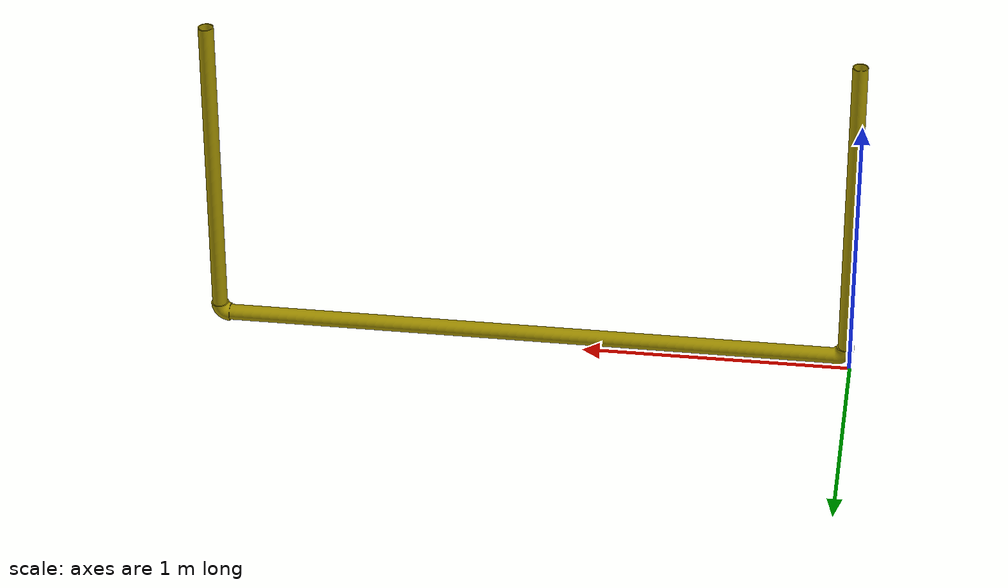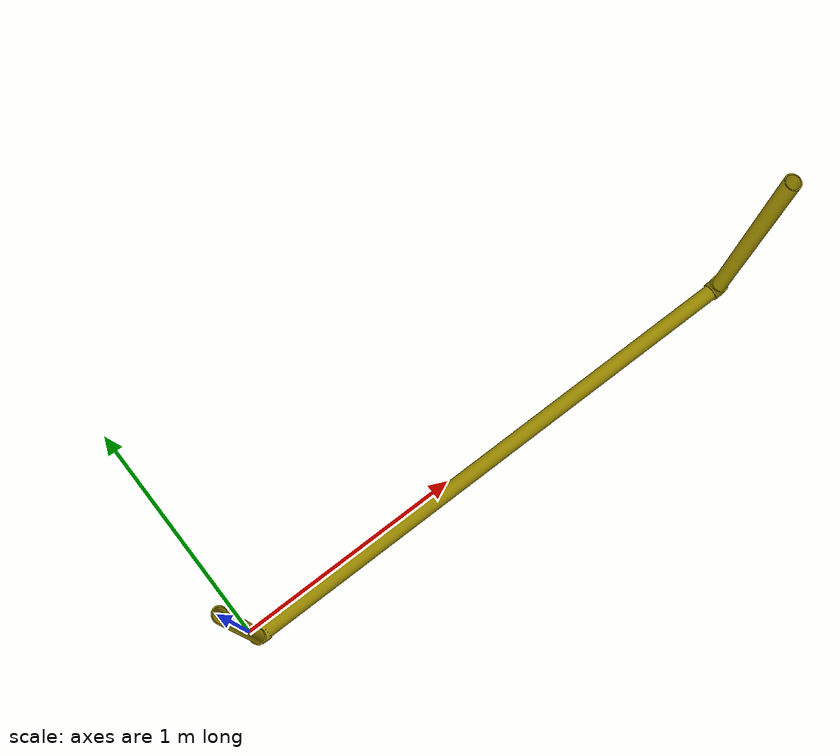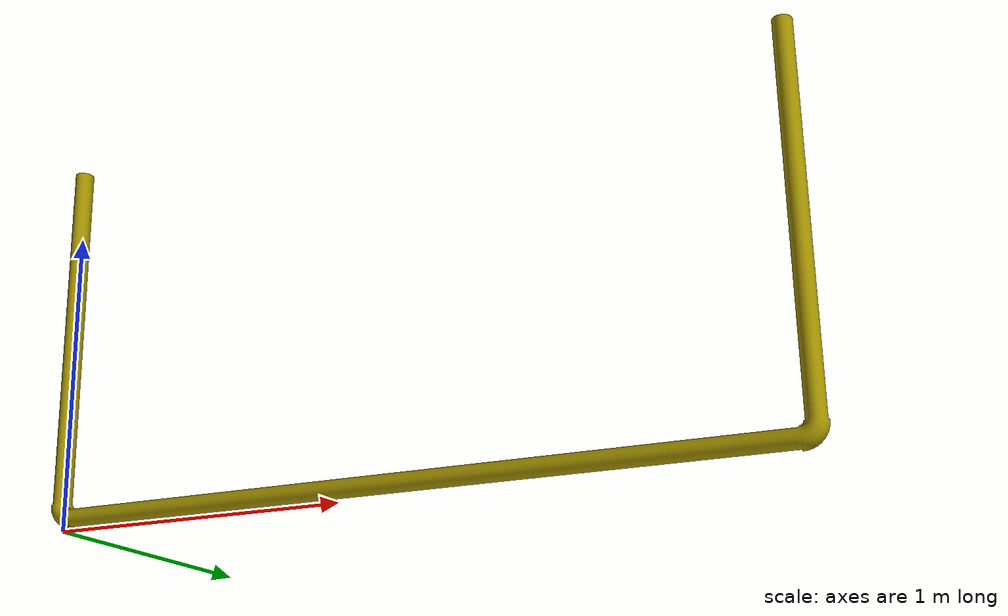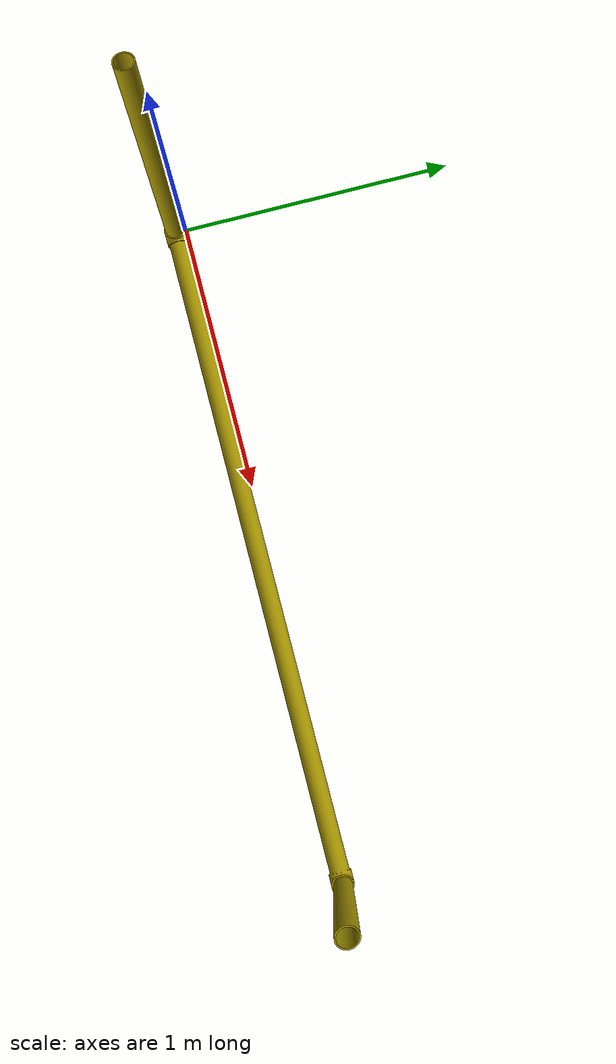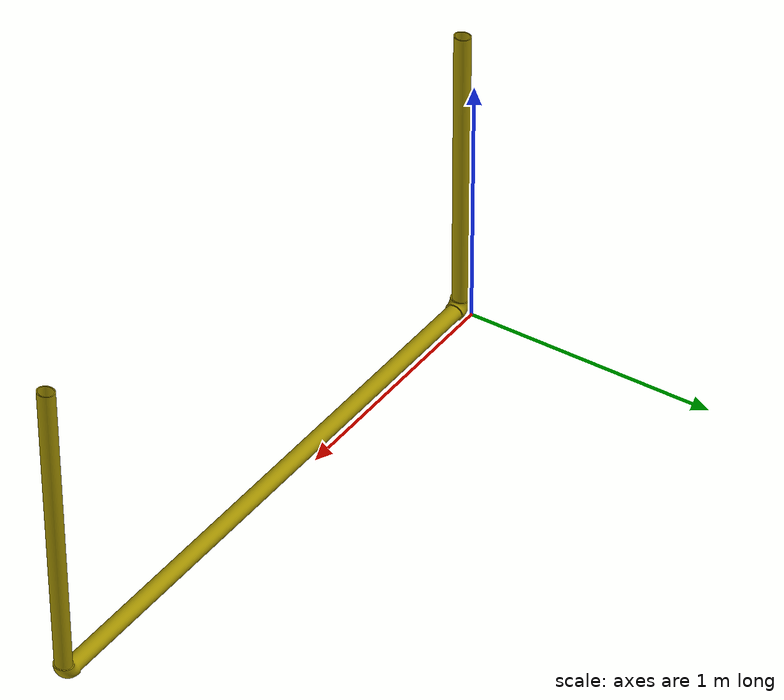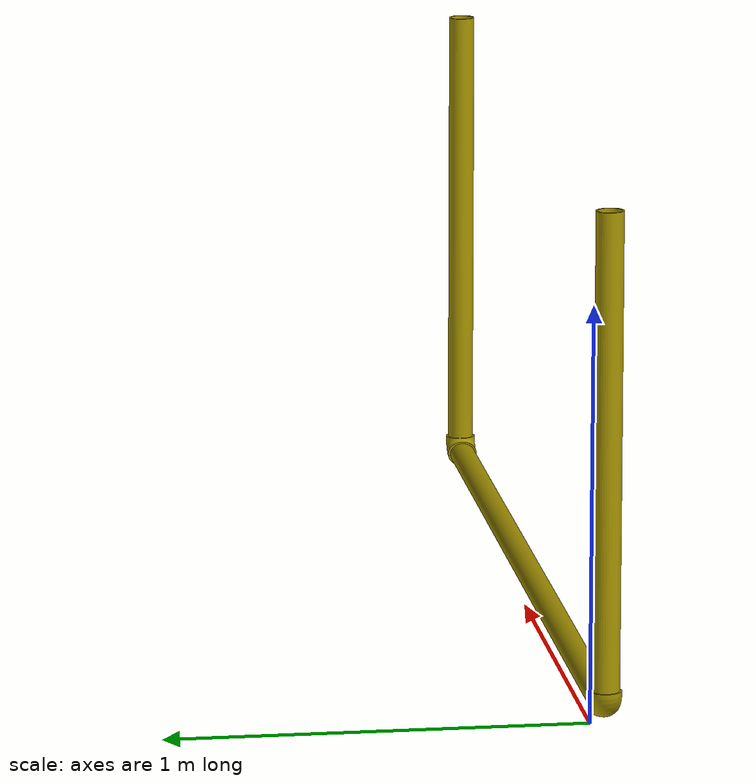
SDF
<?xml version="1.0"?>
<sdf version="1.5">
  <model name="nav_gate">
    <static>true</static>
    <link name="nav_gate">
      <collision name='nav_gatecol'>
        <pose>0 0 0 1.57 0 0</pose>
        <geometry>
          <mesh>
            <uri>file://nav_gate/nav_gate.dae</uri>
          </mesh>
        </geometry>
      </collision>
      <visual name="start_gatevis">
        <pose>0 0 0 1.57 0 0</pose>
        <geometry>
          <mesh>
            <uri>file://nav_gate/nav_gate.dae</uri>
          </mesh>
        </geometry>
      </visual>
    </link>
  </model>
</sdf>
